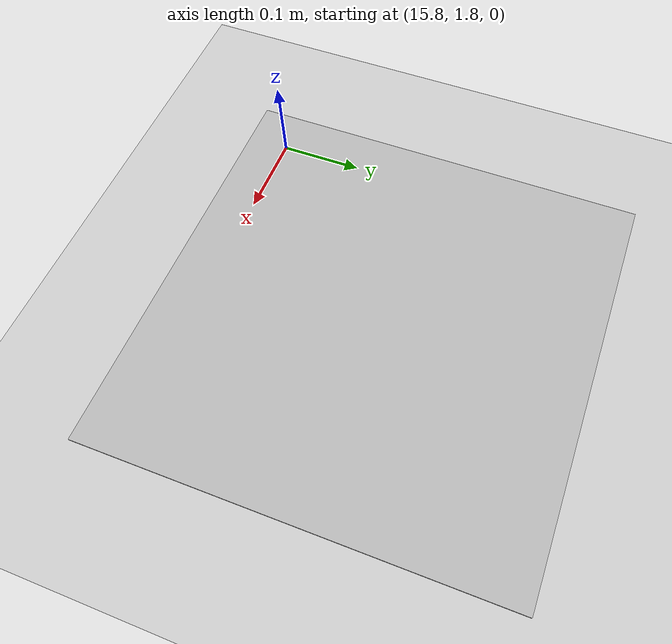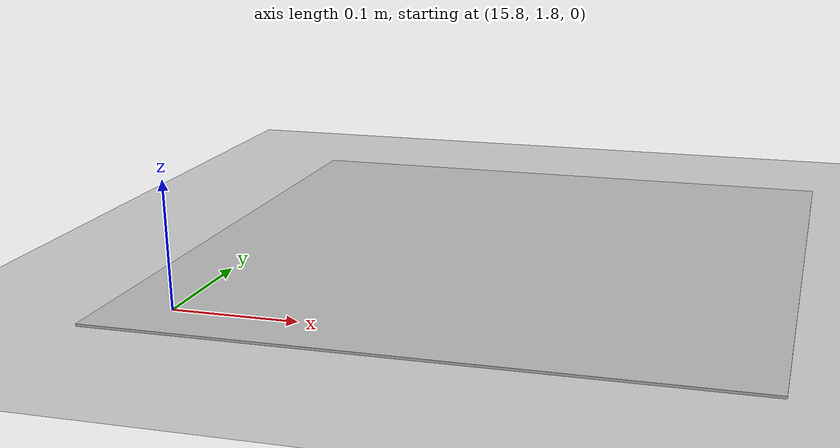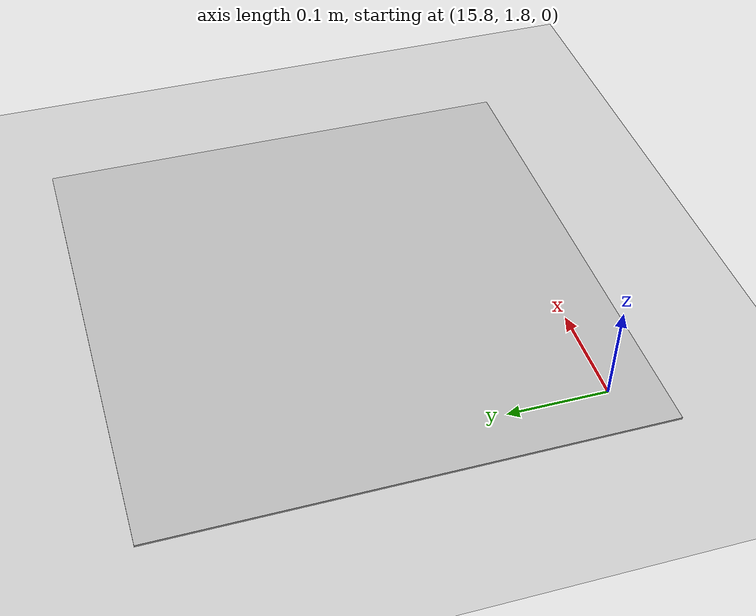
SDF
<?xml version="1.0" ?>
<sdf version="1.4">
  <world name="default">
    <include>
      <uri>model://ground_plane</uri>
    </include>
    <include>
      <uri>model://sun</uri>
    </include>
    <include>
      <uri>model://apriltag_0</uri>
      <pose>16 2.0 0.001 0 0 0</pose>
    </include>
  </world>
</sdf>

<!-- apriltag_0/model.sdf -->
<sdf version="1.6">
  <model name="apriltag_0">
    <static>true</static>

    <link name="link">
      <pose>0 0 0.001 0 0 0</pose>

      <visual name="visual">
        <geometry>
          <box>
            <size>0.5 0.5 0.002</size>
          </box>
        </geometry>
        <material>
          <script>
            <uri>model://apriltag_0/materials/scripts</uri>
            <uri>model://apriltag_0/materials/textures</uri>
            <name>AprilTag/Tag0</name>
          </script>
        </material>
      </visual>

    </link>
  </model>
</sdf>
